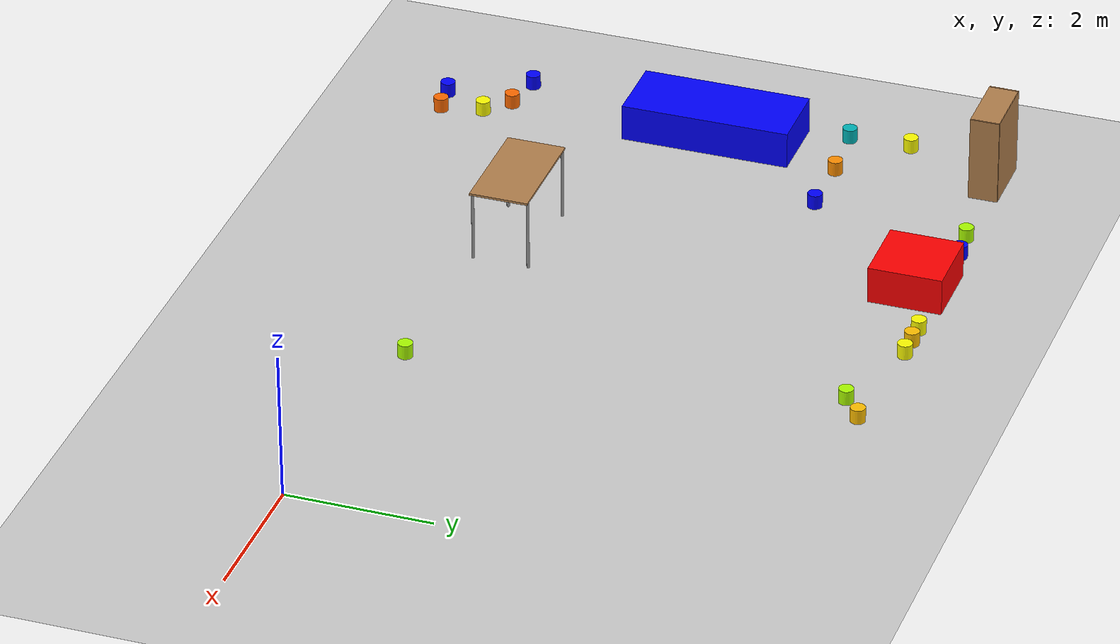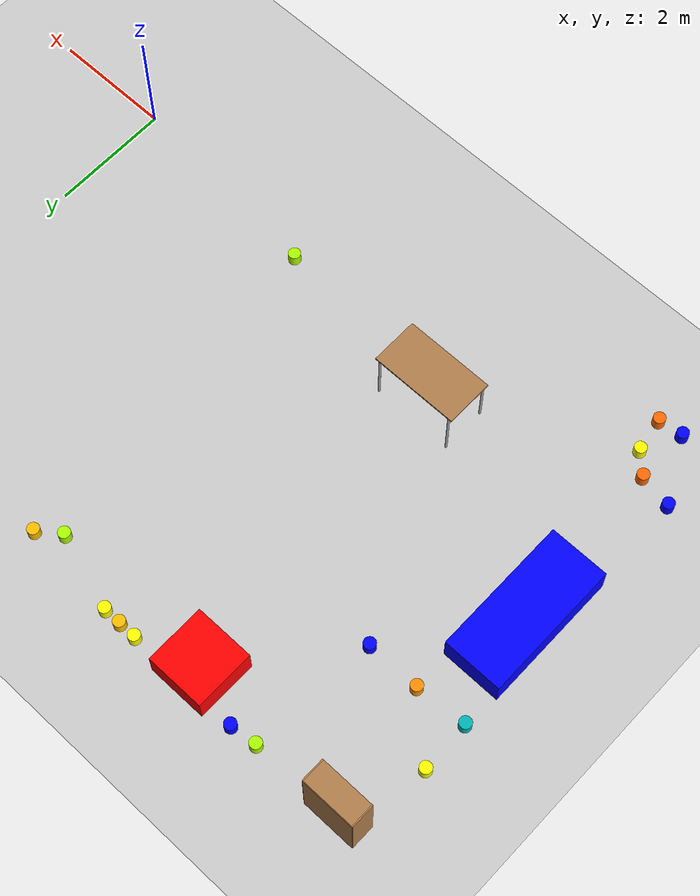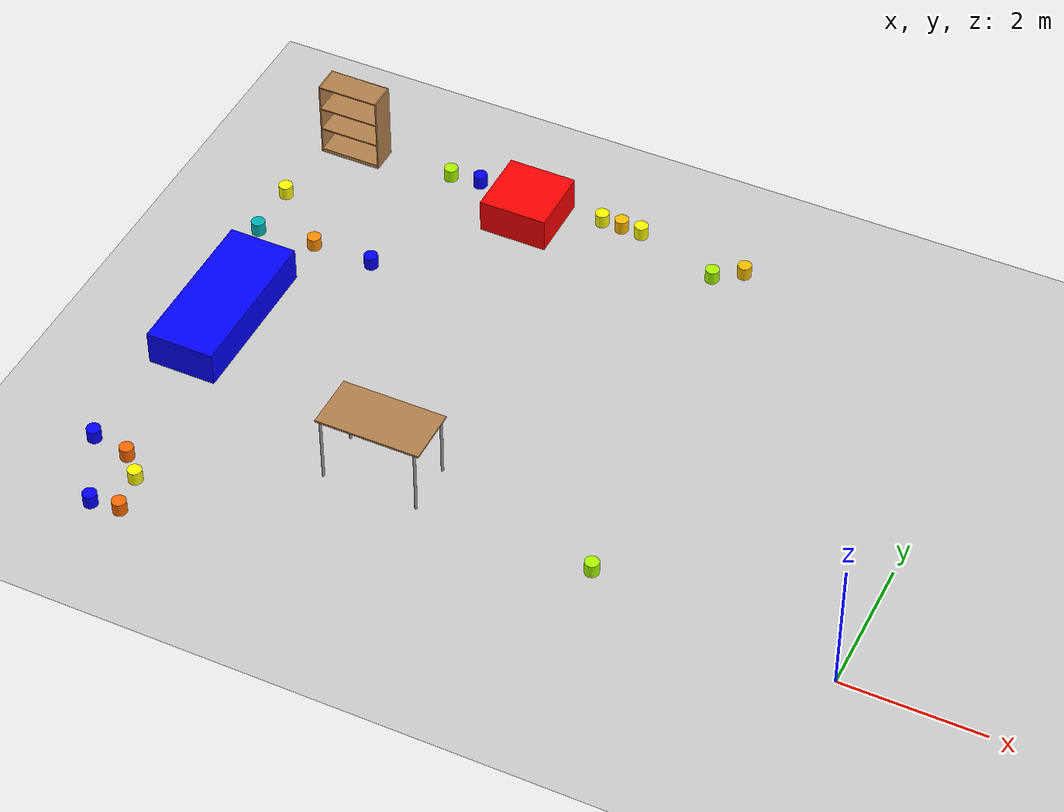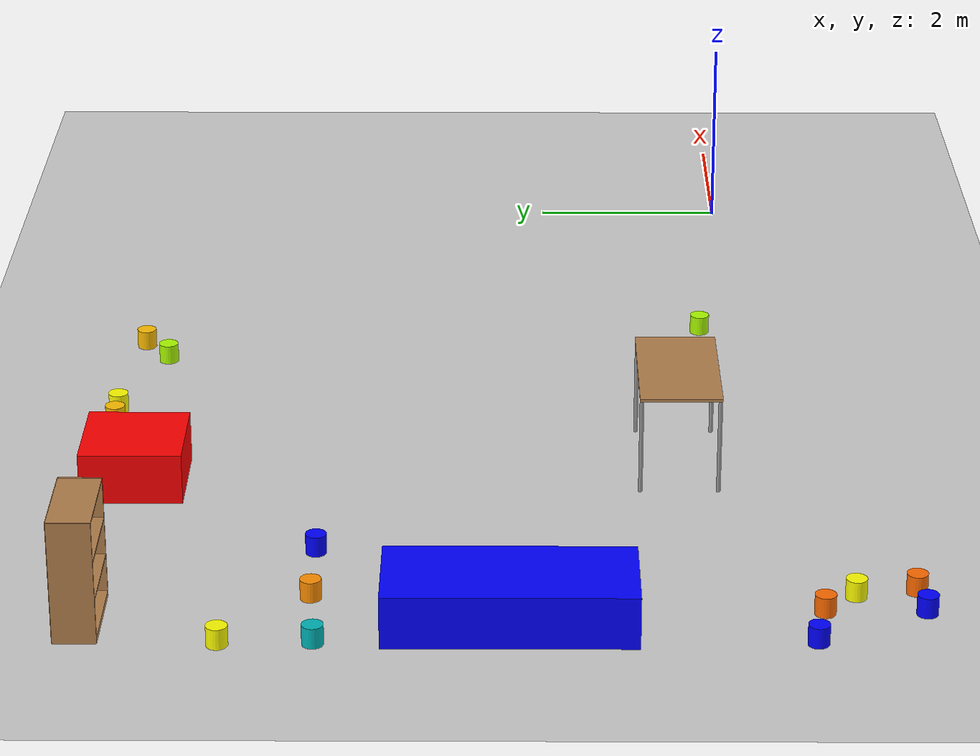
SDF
<sdf version="1.6">
 <world name="default">
  <model name="ground_plane">
   <static>1</static>
   <link name="link">
    <collision name="collision">
     <geometry><plane><normal>0 0 1</normal><size>100 100</size></plane></geometry>
     <surface>
      <contact><collide_bitmask>65535</collide_bitmask></contact>
      <friction><ode><mu>100</mu><mu2>50</mu2></ode></friction>
     </surface>
    </collision>
    <visual name="visual">
     <cast_shadows>0</cast_shadows>
     <geometry><plane><normal>0 0 1</normal><size>100 100</size></plane></geometry>
     <material>
      <script><uri>file://media/materials/scripts/gazebo.material</uri><name>Gazebo/Grey</name></script>
     </material>
    </visual>
   </link>
  </model>
  <model name="blue_box">
   <link name="link_0">
    <inertial>
     <mass>1</mass>
     <inertia>
      <ixx>0.166667</ixx>
      <ixy>0</ixy>
      <ixz>0</ixz>
      <iyy>0.166667</iyy>
      <iyz>0</iyz>
      <izz>0.166667</izz>
     </inertia>
    </inertial>
    <visual name="visual">
     <geometry><box><size>1 2.32493 1</size></box></geometry>
     <material>
      <lighting>1</lighting>
      <script><uri>file://media/materials/scripts/gazebo.material</uri><name>Gazebo/Grey</name></script>
      <shader type="vertex"><normal_map>__default__</normal_map></shader>
      <ambient>0 0 1 1</ambient>
      <diffuse>0 0 1 1</diffuse>
      <specular>0 0 1 1</specular>
      <emissive>0 0 0 1</emissive>
     </material>
    </visual>
    <collision name="collision">
     <geometry><box><size>1 2.32493 1</size></box></geometry>
     <surface>
      <friction>
       <ode><mu>1</mu><mu2>1</mu2><fdir1>0 0 0</fdir1><slip1>0</slip1><slip2>0</slip2></ode>
       <torsional>
        <coefficient>1</coefficient>
        <patch_radius>0</patch_radius>
        <surface_radius>0</surface_radius>
        <use_patch_radius>1</use_patch_radius>
        <ode><slip>0</slip></ode>
       </torsional>
      </friction>
      <bounce><restitution_coefficient>0</restitution_coefficient><threshold>1e+06</threshold></bounce>
      <contact>
       <collide_without_contact>0</collide_without_contact>
       <collide_without_contact_bitmask>1</collide_without_contact_bitmask>
       <collide_bitmask>1</collide_bitmask>
       <ode>
        <soft_cfm>0</soft_cfm>
        <soft_erp>0.2</soft_erp>
        <kp>1e+13</kp>
        <kd>1</kd>
        <max_vel>0.01</max_vel>
        <min_depth>0</min_depth>
       </ode>
       <bullet>
        <split_impulse>1</split_impulse>
        <split_impulse_penetration_threshold>-0.01</split_impulse_penetration_threshold>
        <soft_cfm>0</soft_cfm>
        <soft_erp>0.2</soft_erp>
        <kp>1e+13</kp>
        <kd>1</kd>
       </bullet>
      </contact>
     </surface>
    </collision>
   </link>
   <static>1</static>
   <pose>-9.98993 2.37638 0 0 -0 0</pose>
  </model>
  <model name="bookshelf">
   <static>1</static>
   <link name="link">
    <inertial><mass>1</mass></inertial>
    <collision name="back">
     <pose>0 0.005 0.6 0 -0 0</pose>
     <geometry><box><size>0.9 0.01 1.2</size></box></geometry>
    </collision>
    <visual name="visual1">
     <pose>0 0.005 0.6 0 -0 0</pose>
     <geometry><box><size>0.9 0.01 1.2</size></box></geometry>
     <material>
      <script><uri>file://media/materials/scripts/gazebo.material</uri><name>Gazebo/Wood</name></script>
     </material>
    </visual>
    <collision name="left_side">
     <pose>0.45 -0.195 0.6 0 -0 0</pose>
     <geometry><box><size>0.02 0.4 1.2</size></box></geometry>
    </collision>
    <visual name="visual2">
     <pose>0.45 -0.195 0.6 0 -0 0</pose>
     <geometry><box><size>0.02 0.4 1.2</size></box></geometry>
     <material>
      <script><uri>file://media/materials/scripts/gazebo.material</uri><name>Gazebo/Wood</name></script>
     </material>
    </visual>
    <collision name="right_side">
     <pose>-0.45 -0.195 0.6 0 -0 0</pose>
     <geometry><box><size>0.02 0.4 1.2</size></box></geometry>
    </collision>
    <visual name="visual3">
     <pose>-0.45 -0.195 0.6 0 -0 0</pose>
     <geometry><box><size>0.02 0.4 1.2</size></box></geometry>
     <material>
      <script><uri>file://media/materials/scripts/gazebo.material</uri><name>Gazebo/Wood</name></script>
     </material>
    </visual>
    <collision name="bottom">
     <pose>0 -0.195 0.03 0 -0 0</pose>
     <geometry><box><size>0.88 0.4 0.06</size></box></geometry>
    </collision>
    <visual name="visual4">
     <pose>0 -0.195 0.03 0 -0 0</pose>
     <geometry><box><size>0.88 0.4 0.06</size></box></geometry>
     <material>
      <script><uri>file://media/materials/scripts/gazebo.material</uri><name>Gazebo/Wood</name></script>
     </material>
    </visual>
    <collision name="top">
     <pose>0 -0.195 1.19 0 -0 0</pose>
     <geometry><box><size>0.88 0.4 0.02</size></box></geometry>
    </collision>
    <visual name="visual5">
     <pose>0 -0.195 1.19 0 -0 0</pose>
     <geometry><box><size>0.88 0.4 0.02</size></box></geometry>
     <material>
      <script><uri>file://media/materials/scripts/gazebo.material</uri><name>Gazebo/Wood</name></script>
     </material>
    </visual>
    <collision name="low_shelf">
     <pose>0 -0.195 0.43 0 -0 0</pose>
     <geometry><box><size>0.88 0.4 0.02</size></box></geometry>
    </collision>
    <visual name="visual6">
     <pose>0 -0.195 0.43 0 -0 0</pose>
     <geometry><box><size>0.88 0.4 0.02</size></box></geometry>
     <material>
      <script><uri>file://media/materials/scripts/gazebo.material</uri><name>Gazebo/Wood</name></script>
     </material>
    </visual>
    <collision name="high_shelf">
     <pose>0 -0.195 0.8 0 -0 0</pose>
     <geometry><box><size>0.88 0.4 0.02</size></box></geometry>
    </collision>
    <visual name="visual7">
     <pose>0 -0.195 0.8 0 -0 0</pose>
     <geometry><box><size>0.88 0.4 0.02</size></box></geometry>
     <material>
      <script><uri>file://media/materials/scripts/gazebo.material</uri><name>Gazebo/Wood</name></script>
     </material>
    </visual>
   </link>
   <pose>-9.97911 6.44677 0 0 -0 0</pose>
  </model>
  <model name="cylinder_y">
   <link name="link_0">
    <pose>0 0 0.1 0 -0 0</pose>
    <inertial>
     <mass>1</mass>
     <inertia><ixx>0.145833</ixx><ixy>0</ixy><ixz>0</ixz><iyy>0.145833</iyy><iyz>0</iyz><izz>0.125</izz></inertia>
    </inertial>
    <visual name="visual">
     <geometry><cylinder><radius>0.1</radius><length>0.2</length></cylinder></geometry>
     <material>
      <lighting>1</lighting>
      <script><uri>file://media/materials/scripts/gazebo.material</uri><name>Gazebo/Grey</name></script>
      <ambient>1 1 0 1</ambient>
      <diffuse>1 1 0 1</diffuse>
      <specular>0 0 0 1</specular>
      <emissive>0 0 0 1</emissive>
      <shader type="vertex"><normal_map>__default__</normal_map></shader>
     </material>
    </visual>
    <collision name="collision">
     <geometry><cylinder><radius>0.1</radius><length>0.2</length></cylinder></geometry>
     <surface>
      <friction>
       <ode><mu>1</mu><mu2>1</mu2><fdir1>0 0 0</fdir1><slip1>0</slip1><slip2>0</slip2></ode>
       <torsional>
        <coefficient>1</coefficient>
        <patch_radius>0</patch_radius>
        <surface_radius>0</surface_radius>
        <use_patch_radius>1</use_patch_radius>
        <ode><slip>0</slip></ode>
       </torsional>
      </friction>
      <bounce><restitution_coefficient>0</restitution_coefficient><threshold>1e+06</threshold></bounce>
      <contact>
       <collide_without_contact>0</collide_without_contact>
       <collide_without_contact_bitmask>1</collide_without_contact_bitmask>
       <collide_bitmask>1</collide_bitmask>
       <ode>
        <soft_cfm>0</soft_cfm>
        <soft_erp>0.2</soft_erp>
        <kp>1e+13</kp>
        <kd>1</kd>
        <max_vel>0.01</max_vel>
        <min_depth>0</min_depth>
       </ode>
       <bullet>
        <split_impulse>1</split_impulse>
        <split_impulse_penetration_threshold>-0.01</split_impulse_penetration_threshold>
        <soft_cfm>0</soft_cfm>
        <soft_erp>0.2</soft_erp>
        <kp>1e+13</kp>
        <kd>1</kd>
       </bullet>
      </contact>
     </surface>
    </collision>
   </link>
   <static>1</static>
   <pose>-6.12527 6.39196 0 0 -0 0</pose>
  </model>
  <model name="cylinder_yo">
   <link name="link_0">
    <pose>0 0 0.1 0 -0 0</pose>
    <inertial>
     <mass>1</mass>
     <inertia><ixx>0.145833</ixx><ixy>0</ixy><ixz>0</ixz><iyy>0.145833</iyy><iyz>0</iyz><izz>0.125</izz></inertia>
    </inertial>
    <visual name="visual">
     <geometry><cylinder><radius>0.1</radius><length>0.2</length></cylinder></geometry>
     <material>
      <lighting>1</lighting>
      <script><uri>file://media/materials/scripts/gazebo.material</uri><name>Gazebo/Grey</name></script>
      <ambient>1 0.749 0 1</ambient>
      <diffuse>1 0.749 0 1</diffuse>
      <specular>0 0 0 1</specular>
      <emissive>0 0 0 1</emissive>
      <shader type="vertex"><normal_map>__default__</normal_map></shader>
     </material>
    </visual>
    <collision name="collision">
     <geometry><cylinder><radius>0.1</radius><length>0.2</length></cylinder></geometry>
     <surface>
      <friction>
       <ode><mu>1</mu><mu2>1</mu2><fdir1>0 0 0</fdir1><slip1>0</slip1><slip2>0</slip2></ode>
       <torsional>
        <coefficient>1</coefficient>
        <patch_radius>0</patch_radius>
        <surface_radius>0</surface_radius>
        <use_patch_radius>1</use_patch_radius>
        <ode><slip>0</slip></ode>
       </torsional>
      </friction>
      <bounce><restitution_coefficient>0</restitution_coefficient><threshold>1e+06</threshold></bounce>
      <contact>
       <collide_without_contact>0</collide_without_contact>
       <collide_without_contact_bitmask>1</collide_without_contact_bitmask>
       <collide_bitmask>1</collide_bitmask>
       <ode>
        <soft_cfm>0</soft_cfm>
        <soft_erp>0.2</soft_erp>
        <kp>1e+13</kp>
        <kd>1</kd>
        <max_vel>0.01</max_vel>
        <min_depth>0</min_depth>
       </ode>
       <bullet>
        <split_impulse>1</split_impulse>
        <split_impulse_penetration_threshold>-0.01</split_impulse_penetration_threshold>
        <soft_cfm>0</soft_cfm>
        <soft_erp>0.2</soft_erp>
        <kp>1e+13</kp>
        <kd>1</kd>
       </bullet>
      </contact>
     </surface>
    </collision>
   </link>
   <static>1</static>
   <pose>-5.82217 6.39099 0 0 -0 0</pose>
  </model>
  <model name="cylinder_y_0">
   <link name="link_0">
    <pose>0 0 0.1 0 -0 0</pose>
    <inertial>
     <mass>1</mass>
     <inertia><ixx>0.145833</ixx><ixy>0</ixy><ixz>0</ixz><iyy>0.145833</iyy><iyz>0</iyz><izz>0.125</izz></inertia>
    </inertial>
    <visual name="visual">
     <geometry><cylinder><radius>0.1</radius><length>0.2</length></cylinder></geometry>
     <material>
      <lighting>1</lighting>
      <script><uri>file://media/materials/scripts/gazebo.material</uri><name>Gazebo/Grey</name></script>
      <ambient>1 1 0 1</ambient>
      <diffuse>1 1 0 1</diffuse>
      <specular>0 0 0 1</specular>
      <emissive>0 0 0 1</emissive>
      <shader type="vertex"><normal_map>__default__</normal_map></shader>
     </material>
    </visual>
    <collision name="collision">
     <geometry><cylinder><radius>0.1</radius><length>0.2</length></cylinder></geometry>
     <surface>
      <friction>
       <ode><mu>1</mu><mu2>1</mu2><fdir1>0 0 0</fdir1><slip1>0</slip1><slip2>0</slip2></ode>
       <torsional>
        <coefficient>1</coefficient>
        <patch_radius>0</patch_radius>
        <surface_radius>0</surface_radius>
        <use_patch_radius>1</use_patch_radius>
        <ode><slip>0</slip></ode>
       </torsional>
      </friction>
      <bounce><restitution_coefficient>0</restitution_coefficient><threshold>1e+06</threshold></bounce>
      <contact>
       <collide_without_contact>0</collide_without_contact>
       <collide_without_contact_bitmask>1</collide_without_contact_bitmask>
       <collide_bitmask>1</collide_bitmask>
       <ode>
        <soft_cfm>0</soft_cfm>
        <soft_erp>0.2</soft_erp>
        <kp>1e+13</kp>
        <kd>1</kd>
        <max_vel>0.01</max_vel>
        <min_depth>0</min_depth>
       </ode>
       <bullet>
        <split_impulse>1</split_impulse>
        <split_impulse_penetration_threshold>-0.01</split_impulse_penetration_threshold>
        <soft_cfm>0</soft_cfm>
        <soft_erp>0.2</soft_erp>
        <kp>1e+13</kp>
        <kd>1</kd>
       </bullet>
      </contact>
     </surface>
    </collision>
   </link>
   <static>1</static>
   <pose>-5.51904 6.39011 0 0 -0 0</pose>
  </model>
  <model name="cylinder_b_3">
   <link name="link_0">
    <pose>0 0 0.1 0 -0 0</pose>
    <inertial>
     <mass>1</mass>
     <inertia><ixx>0.145833</ixx><ixy>0</ixy><ixz>0</ixz><iyy>0.145833</iyy><iyz>0</iyz><izz>0.125</izz></inertia>
    </inertial>
    <visual name="visual">
     <geometry><cylinder><radius>0.1</radius><length>0.2</length></cylinder></geometry>
     <material>
      <lighting>1</lighting>
      <script><uri>file://media/materials/scripts/gazebo.material</uri><name>Gazebo/Grey</name></script>
      <ambient>0 0 1 1</ambient>
      <diffuse>0 0 1 1</diffuse>
      <specular>0 0 0 1</specular>
      <emissive>0 0 0 1</emissive>
      <shader type="vertex"><normal_map>__default__</normal_map></shader>
     </material>
    </visual>
    <collision name="collision">
     <geometry><cylinder><radius>0.1</radius><length>0.2</length></cylinder></geometry>
     <surface>
      <friction>
       <ode><mu>1</mu><mu2>1</mu2><fdir1>0 0 0</fdir1><slip1>0</slip1><slip2>0</slip2></ode>
       <torsional>
        <coefficient>1</coefficient>
        <patch_radius>0</patch_radius>
        <surface_radius>0</surface_radius>
        <use_patch_radius>1</use_patch_radius>
        <ode><slip>0</slip></ode>
       </torsional>
      </friction>
      <bounce><restitution_coefficient>0</restitution_coefficient><threshold>1e+06</threshold></bounce>
      <contact>
       <collide_without_contact>0</collide_without_contact>
       <collide_without_contact_bitmask>1</collide_without_contact_bitmask>
       <collide_bitmask>1</collide_bitmask>
       <ode>
        <soft_cfm>0</soft_cfm>
        <soft_erp>0.2</soft_erp>
        <kp>1e+13</kp>
        <kd>1</kd>
        <max_vel>0.01</max_vel>
        <min_depth>0</min_depth>
       </ode>
       <bullet>
        <split_impulse>1</split_impulse>
        <split_impulse_penetration_threshold>-0.01</split_impulse_penetration_threshold>
        <soft_cfm>0</soft_cfm>
        <soft_erp>0.2</soft_erp>
        <kp>1e+13</kp>
        <kd>1</kd>
       </bullet>
      </contact>
     </surface>
    </collision>
   </link>
   <static>1</static>
   <pose>-9.83604 -1.40171 0 0 -0 0</pose>
  </model>
  <model name="cylinder_or_1">
   <link name="link_0">
    <pose>0 0 0.1 0 -0 0</pose>
    <inertial>
     <mass>1</mass>
     <inertia><ixx>0.145833</ixx><ixy>0</ixy><ixz>0</ixz><iyy>0.145833</iyy><iyz>0</iyz><izz>0.125</izz></inertia>
    </inertial>
    <visual name="visual">
     <geometry><cylinder><radius>0.1</radius><length>0.2</length></cylinder></geometry>
     <material>
      <lighting>1</lighting>
      <script><uri>file://media/materials/scripts/gazebo.material</uri><name>Gazebo/Grey</name></script>
      <ambient>1 0.416 0 1</ambient>
      <diffuse>1 0.416 0 1</diffuse>
      <specular>0 0 0 1</specular>
      <emissive>0 0 0 1</emissive>
      <shader type="vertex"><normal_map>__default__</normal_map></shader>
     </material>
    </visual>
    <collision name="collision">
     <geometry><cylinder><radius>0.1</radius><length>0.2</length></cylinder></geometry>
     <surface>
      <friction>
       <ode><mu>1</mu><mu2>1</mu2><fdir1>0 0 0</fdir1><slip1>0</slip1><slip2>0</slip2></ode>
       <torsional>
        <coefficient>1</coefficient>
        <patch_radius>0</patch_radius>
        <surface_radius>0</surface_radius>
        <use_patch_radius>1</use_patch_radius>
        <ode><slip>0</slip></ode>
       </torsional>
      </friction>
      <bounce><restitution_coefficient>0</restitution_coefficient><threshold>1e+06</threshold></bounce>
      <contact>
       <collide_without_contact>0</collide_without_contact>
       <collide_without_contact_bitmask>1</collide_without_contact_bitmask>
       <collide_bitmask>1</collide_bitmask>
       <ode>
        <soft_cfm>0</soft_cfm>
        <soft_erp>0.2</soft_erp>
        <kp>1e+13</kp>
        <kd>1</kd>
        <max_vel>0.01</max_vel>
        <min_depth>0</min_depth>
       </ode>
       <bullet>
        <split_impulse>1</split_impulse>
        <split_impulse_penetration_threshold>-0.01</split_impulse_penetration_threshold>
        <soft_cfm>0</soft_cfm>
        <soft_erp>0.2</soft_erp>
        <kp>1e+13</kp>
        <kd>1</kd>
       </bullet>
      </contact>
     </surface>
    </collision>
   </link>
   <static>1</static>
   <pose>-9.42535 -1.35183 0 0 -0 0</pose>
  </model>
  <model name="cylinder_or_2">
   <link name="link_0">
    <pose>0 0 0.1 0 -0 0</pose>
    <inertial>
     <mass>1</mass>
     <inertia><ixx>0.145833</ixx><ixy>0</ixy><ixz>0</ixz><iyy>0.145833</iyy><iyz>0</iyz><izz>0.125</izz></inertia>
    </inertial>
    <visual name="visual">
     <geometry><cylinder><radius>0.1</radius><length>0.2</length></cylinder></geometry>
     <material>
      <lighting>1</lighting>
      <script><uri>file://media/materials/scripts/gazebo.material</uri><name>Gazebo/Grey</name></script>
      <ambient>1 0.416 0 1</ambient>
      <diffuse>1 0.416 0 1</diffuse>
      <specular>0 0 0 1</specular>
      <emissive>0 0 0 1</emissive>
      <shader type="vertex"><normal_map>__default__</normal_map></shader>
     </material>
    </visual>
    <collision name="collision">
     <geometry><cylinder><radius>0.1</radius><length>0.2</length></cylinder></geometry>
     <surface>
      <friction>
       <ode><mu>1</mu><mu2>1</mu2><fdir1>0 0 0</fdir1><slip1>0</slip1><slip2>0</slip2></ode>
       <torsional>
        <coefficient>1</coefficient>
        <patch_radius>0</patch_radius>
        <surface_radius>0</surface_radius>
        <use_patch_radius>1</use_patch_radius>
        <ode><slip>0</slip></ode>
       </torsional>
      </friction>
      <bounce><restitution_coefficient>0</restitution_coefficient><threshold>1e+06</threshold></bounce>
      <contact>
       <collide_without_contact>0</collide_without_contact>
       <collide_without_contact_bitmask>1</collide_without_contact_bitmask>
       <collide_bitmask>1</collide_bitmask>
       <ode>
        <soft_cfm>0</soft_cfm>
        <soft_erp>0.2</soft_erp>
        <kp>1e+13</kp>
        <kd>1</kd>
        <max_vel>0.01</max_vel>
        <min_depth>0</min_depth>
       </ode>
       <bullet>
        <split_impulse>1</split_impulse>
        <split_impulse_penetration_threshold>-0.01</split_impulse_penetration_threshold>
        <soft_cfm>0</soft_cfm>
        <soft_erp>0.2</soft_erp>
        <kp>1e+13</kp>
        <kd>1</kd>
       </bullet>
      </contact>
     </surface>
    </collision>
   </link>
   <static>1</static>
   <pose>-9.83394 -0.476864 0 0 -0 0</pose>
  </model>
  <model name="cylinder_y_1">
   <link name="link_0">
    <pose>0 0 0.1 0 -0 0</pose>
    <inertial>
     <mass>1</mass>
     <inertia><ixx>0.145833</ixx><ixy>0</ixy><ixz>0</ixz><iyy>0.145833</iyy><iyz>0</iyz><izz>0.125</izz></inertia>
    </inertial>
    <visual name="visual">
     <geometry><cylinder><radius>0.1</radius><length>0.2</length></cylinder></geometry>
     <material>
      <lighting>1</lighting>
      <script><uri>file://media/materials/scripts/gazebo.material</uri><name>Gazebo/Grey</name></script>
      <ambient>1 1 0 1</ambient>
      <diffuse>1 1 0 1</diffuse>
      <specular>0 0 0 1</specular>
      <emissive>0 0 0 1</emissive>
      <shader type="vertex"><normal_map>__default__</normal_map></shader>
     </material>
    </visual>
    <collision name="collision">
     <geometry><cylinder><radius>0.1</radius><length>0.2</length></cylinder></geometry>
     <surface>
      <friction>
       <ode><mu>1</mu><mu2>1</mu2><fdir1>0 0 0</fdir1><slip1>0</slip1><slip2>0</slip2></ode>
       <torsional>
        <coefficient>1</coefficient>
        <patch_radius>0</patch_radius>
        <surface_radius>0</surface_radius>
        <use_patch_radius>1</use_patch_radius>
        <ode><slip>0</slip></ode>
       </torsional>
      </friction>
      <bounce><restitution_coefficient>0</restitution_coefficient><threshold>1e+06</threshold></bounce>
      <contact>
       <collide_without_contact>0</collide_without_contact>
       <collide_without_contact_bitmask>1</collide_without_contact_bitmask>
       <collide_bitmask>1</collide_bitmask>
       <ode>
        <soft_cfm>0</soft_cfm>
        <soft_erp>0.2</soft_erp>
        <kp>1e+13</kp>
        <kd>1</kd>
        <max_vel>0.01</max_vel>
        <min_depth>0</min_depth>
       </ode>
       <bullet>
        <split_impulse>1</split_impulse>
        <split_impulse_penetration_threshold>-0.01</split_impulse_penetration_threshold>
        <soft_cfm>0</soft_cfm>
        <soft_erp>0.2</soft_erp>
        <kp>1e+13</kp>
        <kd>1</kd>
       </bullet>
      </contact>
     </surface>
    </collision>
   </link>
   <static>1</static>
   <pose>-9.52624 -0.785309 0 0 -0 0</pose>
  </model>
  <model name="cylinder_b_4">
   <link name="link_0">
    <pose>0 0 0.1 0 -0 0</pose>
    <inertial>
     <mass>1</mass>
     <inertia><ixx>0.145833</ixx><ixy>0</ixy><ixz>0</ixz><iyy>0.145833</iyy><iyz>0</iyz><izz>0.125</izz></inertia>
    </inertial>
    <visual name="visual">
     <geometry><cylinder><radius>0.1</radius><length>0.2</length></cylinder></geometry>
     <material>
      <lighting>1</lighting>
      <script><uri>file://media/materials/scripts/gazebo.material</uri><name>Gazebo/Grey</name></script>
      <ambient>0 0 1 1</ambient>
      <diffuse>0 0 1 1</diffuse>
      <specular>0 0 0 1</specular>
      <emissive>0 0 0 1</emissive>
      <shader type="vertex"><normal_map>__default__</normal_map></shader>
     </material>
    </visual>
    <collision name="collision">
     <geometry><cylinder><radius>0.1</radius><length>0.2</length></cylinder></geometry>
     <surface>
      <friction>
       <ode><mu>1</mu><mu2>1</mu2><fdir1>0 0 0</fdir1><slip1>0</slip1><slip2>0</slip2></ode>
       <torsional>
        <coefficient>1</coefficient>
        <patch_radius>0</patch_radius>
        <surface_radius>0</surface_radius>
        <use_patch_radius>1</use_patch_radius>
        <ode><slip>0</slip></ode>
       </torsional>
      </friction>
      <bounce><restitution_coefficient>0</restitution_coefficient><threshold>1e+06</threshold></bounce>
      <contact>
       <collide_without_contact>0</collide_without_contact>
       <collide_without_contact_bitmask>1</collide_without_contact_bitmask>
       <collide_bitmask>1</collide_bitmask>
       <ode>
        <soft_cfm>0</soft_cfm>
        <soft_erp>0.2</soft_erp>
        <kp>1e+13</kp>
        <kd>1</kd>
        <max_vel>0.01</max_vel>
        <min_depth>0</min_depth>
       </ode>
       <bullet>
        <split_impulse>1</split_impulse>
        <split_impulse_penetration_threshold>-0.01</split_impulse_penetration_threshold>
        <soft_cfm>0</soft_cfm>
        <soft_erp>0.2</soft_erp>
        <kp>1e+13</kp>
        <kd>1</kd>
       </bullet>
      </contact>
     </surface>
    </collision>
   </link>
   <static>1</static>
   <pose>-10.3986 -0.371477 0 0 -0 0</pose>
  </model>
  <model name="cylinder_gy_4">
   <link name="link_0">
    <pose>0 0 0.1 0 -0 0</pose>
    <inertial>
     <mass>1</mass>
     <inertia><ixx>0.145833</ixx><ixy>0</ixy><ixz>0</ixz><iyy>0.145833</iyy><iyz>0</iyz><izz>0.125</izz></inertia>
    </inertial>
    <visual name="visual">
     <geometry><cylinder><radius>0.1</radius><length>0.2</length></cylinder></geometry>
     <material>
      <lighting>1</lighting>
      <script><uri>file://media/materials/scripts/gazebo.material</uri><name>Gazebo/Grey</name></script>
      <ambient>0.675 1 0 1</ambient>
      <diffuse>0.675 1 0 1</diffuse>
      <specular>0 0 0 1</specular>
      <emissive>0 0 0 1</emissive>
      <shader type="vertex"><normal_map>__default__</normal_map></shader>
     </material>
    </visual>
    <collision name="collision">
     <geometry><cylinder><radius>0.1</radius><length>0.2</length></cylinder></geometry>
     <surface>
      <friction>
       <ode><mu>1</mu><mu2>1</mu2><fdir1>0 0 0</fdir1><slip1>0</slip1><slip2>0</slip2></ode>
       <torsional>
        <coefficient>1</coefficient>
        <patch_radius>0</patch_radius>
        <surface_radius>0</surface_radius>
        <use_patch_radius>1</use_patch_radius>
        <ode><slip>0</slip></ode>
       </torsional>
      </friction>
      <bounce><restitution_coefficient>0</restitution_coefficient><threshold>1e+06</threshold></bounce>
      <contact>
       <collide_without_contact>0</collide_without_contact>
       <collide_without_contact_bitmask>1</collide_without_contact_bitmask>
       <collide_bitmask>1</collide_bitmask>
       <ode>
        <soft_cfm>0</soft_cfm>
        <soft_erp>0.2</soft_erp>
        <kp>1e+13</kp>
        <kd>1</kd>
        <max_vel>0.01</max_vel>
        <min_depth>0</min_depth>
       </ode>
       <bullet>
        <split_impulse>1</split_impulse>
        <split_impulse_penetration_threshold>-0.01</split_impulse_penetration_threshold>
        <soft_cfm>0</soft_cfm>
        <soft_erp>0.2</soft_erp>
        <kp>1e+13</kp>
        <kd>1</kd>
       </bullet>
      </contact>
     </surface>
    </collision>
   </link>
   <static>1</static>
   <pose>-3.47238 0.335939 0 0 -0 0</pose>
  </model>
  <model name="cylinder_b_13">
   <link name="link_0">
    <pose>0 0 0.1 0 -0 0</pose>
    <inertial>
     <mass>1</mass>
     <inertia><ixx>0.145833</ixx><ixy>0</ixy><ixz>0</ixz><iyy>0.145833</iyy><iyz>0</iyz><izz>0.125</izz></inertia>
    </inertial>
    <visual name="visual">
     <geometry><cylinder><radius>0.1</radius><length>0.2</length></cylinder></geometry>
     <material>
      <lighting>1</lighting>
      <script><uri>file://media/materials/scripts/gazebo.material</uri><name>Gazebo/Grey</name></script>
      <ambient>0 0 1 1</ambient>
      <diffuse>0 0 1 1</diffuse>
      <specular>0 0 0 1</specular>
      <emissive>0 0 0 1</emissive>
      <shader type="vertex"><normal_map>__default__</normal_map></shader>
     </material>
    </visual>
    <collision name="collision">
     <geometry><cylinder><radius>0.1</radius><length>0.2</length></cylinder></geometry>
     <surface>
      <friction>
       <ode><mu>1</mu><mu2>1</mu2><fdir1>0 0 0</fdir1><slip1>0</slip1><slip2>0</slip2></ode>
       <torsional>
        <coefficient>1</coefficient>
        <patch_radius>0</patch_radius>
        <surface_radius>0</surface_radius>
        <use_patch_radius>1</use_patch_radius>
        <ode><slip>0</slip></ode>
       </torsional>
      </friction>
      <bounce><restitution_coefficient>0</restitution_coefficient><threshold>1e+06</threshold></bounce>
      <contact>
       <collide_without_contact>0</collide_without_contact>
       <collide_without_contact_bitmask>1</collide_without_contact_bitmask>
       <collide_bitmask>1</collide_bitmask>
       <ode>
        <soft_cfm>0</soft_cfm>
        <soft_erp>0.2</soft_erp>
        <kp>1e+13</kp>
        <kd>1</kd>
        <max_vel>0.01</max_vel>
        <min_depth>0</min_depth>
       </ode>
       <bullet>
        <split_impulse>1</split_impulse>
        <split_impulse_penetration_threshold>-0.01</split_impulse_penetration_threshold>
        <soft_cfm>0</soft_cfm>
        <soft_erp>0.2</soft_erp>
        <kp>1e+13</kp>
        <kd>1</kd>
       </bullet>
      </contact>
     </surface>
    </collision>
   </link>
   <static>1</static>
   <pose>-8.66138 4.19456 0 0 -0 0</pose>
  </model>
  <model name="cylinder_bg_8">
   <link name="link_0">
    <pose>0 0 0.1 0 -0 0</pose>
    <inertial>
     <mass>1</mass>
     <inertia><ixx>0.145833</ixx><ixy>0</ixy><ixz>0</ixz><iyy>0.145833</iyy><iyz>0</iyz><izz>0.125</izz></inertia>
    </inertial>
    <visual name="visual">
     <geometry><cylinder><radius>0.1</radius><length>0.2</length></cylinder></geometry>
     <material>
      <lighting>1</lighting>
      <script><uri>file://media/materials/scripts/gazebo.material</uri><name>Gazebo/Grey</name></script>
      <ambient>0 0.71 0.722 1</ambient>
      <diffuse>0 0.71 0.722 1</diffuse>
      <specular>0 0 0 1</specular>
      <emissive>0 0 0 1</emissive>
      <shader type="vertex"><normal_map>__default__</normal_map></shader>
     </material>
    </visual>
    <collision name="collision">
     <geometry><cylinder><radius>0.1</radius><length>0.2</length></cylinder></geometry>
     <surface>
      <friction>
       <ode><mu>1</mu><mu2>1</mu2><fdir1>0 0 0</fdir1><slip1>0</slip1><slip2>0</slip2></ode>
       <torsional>
        <coefficient>1</coefficient>
        <patch_radius>0</patch_radius>
        <surface_radius>0</surface_radius>
        <use_patch_radius>1</use_patch_radius>
        <ode><slip>0</slip></ode>
       </torsional>
      </friction>
      <bounce><restitution_coefficient>0</restitution_coefficient><threshold>1e+06</threshold></bounce>
      <contact>
       <collide_without_contact>0</collide_without_contact>
       <collide_without_contact_bitmask>1</collide_without_contact_bitmask>
       <collide_bitmask>1</collide_bitmask>
       <ode>
        <soft_cfm>0</soft_cfm>
        <soft_erp>0.2</soft_erp>
        <kp>1e+13</kp>
        <kd>1</kd>
        <max_vel>0.01</max_vel>
        <min_depth>0</min_depth>
       </ode>
       <bullet>
        <split_impulse>1</split_impulse>
        <split_impulse_penetration_threshold>-0.01</split_impulse_penetration_threshold>
        <soft_cfm>0</soft_cfm>
        <soft_erp>0.2</soft_erp>
        <kp>1e+13</kp>
        <kd>1</kd>
       </bullet>
      </contact>
     </surface>
    </collision>
   </link>
   <static>1</static>
   <pose>-10.4212 4.13182 0 0 -0 0</pose>
  </model>
  <model name="cylinder_o_3">
   <link name="link_0">
    <pose>0 0 0.1 0 -0 0</pose>
    <inertial>
     <mass>1</mass>
     <inertia><ixx>0.145833</ixx><ixy>0</ixy><ixz>0</ixz><iyy>0.145833</iyy><iyz>0</iyz><izz>0.125</izz></inertia>
    </inertial>
    <visual name="visual">
     <geometry><cylinder><radius>0.1</radius><length>0.2</length></cylinder></geometry>
     <material>
      <lighting>1</lighting>
      <script><uri>file://media/materials/scripts/gazebo.material</uri><name>Gazebo/Grey</name></script>
      <ambient>1 0.561 0 1</ambient>
      <diffuse>1 0.561 0 1</diffuse>
      <specular>0 0 0 1</specular>
      <emissive>0 0 0 1</emissive>
      <shader type="vertex"><normal_map>__default__</normal_map></shader>
     </material>
    </visual>
    <collision name="collision">
     <geometry><cylinder><radius>0.1</radius><length>0.2</length></cylinder></geometry>
     <surface>
      <friction>
       <ode><mu>1</mu><mu2>1</mu2><fdir1>0 0 0</fdir1><slip1>0</slip1><slip2>0</slip2></ode>
       <torsional>
        <coefficient>1</coefficient>
        <patch_radius>0</patch_radius>
        <surface_radius>0</surface_radius>
        <use_patch_radius>1</use_patch_radius>
        <ode><slip>0</slip></ode>
       </torsional>
      </friction>
      <bounce><restitution_coefficient>0</restitution_coefficient><threshold>1e+06</threshold></bounce>
      <contact>
       <collide_without_contact>0</collide_without_contact>
       <collide_without_contact_bitmask>1</collide_without_contact_bitmask>
       <collide_bitmask>1</collide_bitmask>
       <ode>
        <soft_cfm>0</soft_cfm>
        <soft_erp>0.2</soft_erp>
        <kp>1e+13</kp>
        <kd>1</kd>
        <max_vel>0.01</max_vel>
        <min_depth>0</min_depth>
       </ode>
       <bullet>
        <split_impulse>1</split_impulse>
        <split_impulse_penetration_threshold>-0.01</split_impulse_penetration_threshold>
        <soft_cfm>0</soft_cfm>
        <soft_erp>0.2</soft_erp>
        <kp>1e+13</kp>
        <kd>1</kd>
       </bullet>
      </contact>
     </surface>
    </collision>
   </link>
   <static>1</static>
   <pose>-9.56196 4.19498 0 0 -0 0</pose>
  </model>
  <model name="cylinder_y_11">
   <link name="link_0">
    <pose>0 0 0.1 0 -0 0</pose>
    <inertial>
     <mass>1</mass>
     <inertia><ixx>0.145833</ixx><ixy>0</ixy><ixz>0</ixz><iyy>0.145833</iyy><iyz>0</iyz><izz>0.125</izz></inertia>
    </inertial>
    <visual name="visual">
     <geometry><cylinder><radius>0.1</radius><length>0.2</length></cylinder></geometry>
     <material>
      <lighting>1</lighting>
      <script><uri>file://media/materials/scripts/gazebo.material</uri><name>Gazebo/Grey</name></script>
      <ambient>1 1 0 1</ambient>
      <diffuse>1 1 0 1</diffuse>
      <specular>0 0 0 1</specular>
      <emissive>0 0 0 1</emissive>
      <shader type="vertex"><normal_map>__default__</normal_map></shader>
     </material>
    </visual>
    <collision name="collision">
     <geometry><cylinder><radius>0.1</radius><length>0.2</length></cylinder></geometry>
     <surface>
      <friction>
       <ode><mu>1</mu><mu2>1</mu2><fdir1>0 0 0</fdir1><slip1>0</slip1><slip2>0</slip2></ode>
       <torsional>
        <coefficient>1</coefficient>
        <patch_radius>0</patch_radius>
        <surface_radius>0</surface_radius>
        <use_patch_radius>1</use_patch_radius>
        <ode><slip>0</slip></ode>
       </torsional>
      </friction>
      <bounce><restitution_coefficient>0</restitution_coefficient><threshold>1e+06</threshold></bounce>
      <contact>
       <collide_without_contact>0</collide_without_contact>
       <collide_without_contact_bitmask>1</collide_without_contact_bitmask>
       <collide_bitmask>1</collide_bitmask>
       <ode>
        <soft_cfm>0</soft_cfm>
        <soft_erp>0.2</soft_erp>
        <kp>1e+13</kp>
        <kd>1</kd>
        <max_vel>0.01</max_vel>
        <min_depth>0</min_depth>
       </ode>
       <bullet>
        <split_impulse>1</split_impulse>
        <split_impulse_penetration_threshold>-0.01</split_impulse_penetration_threshold>
        <soft_cfm>0</soft_cfm>
        <soft_erp>0.2</soft_erp>
        <kp>1e+13</kp>
        <kd>1</kd>
       </bullet>
      </contact>
     </surface>
    </collision>
   </link>
   <static>1</static>
   <pose>-10.4444 4.98126 0 0 -0 0</pose>
  </model>
  <model name="cylinder_gy_6">
   <link name="link_0">
    <pose>0 0 0.1 0 -0 0</pose>
    <inertial>
     <mass>1</mass>
     <inertia><ixx>0.145833</ixx><ixy>0</ixy><ixz>0</ixz><iyy>0.145833</iyy><iyz>0</iyz><izz>0.125</izz></inertia>
    </inertial>
    <visual name="visual">
     <geometry><cylinder><radius>0.1</radius><length>0.2</length></cylinder></geometry>
     <material>
      <lighting>1</lighting>
      <script><uri>file://media/materials/scripts/gazebo.material</uri><name>Gazebo/Grey</name></script>
      <ambient>0.675 1 0 1</ambient>
      <diffuse>0.675 1 0 1</diffuse>
      <specular>0 0 0 1</specular>
      <emissive>0 0 0 1</emissive>
      <shader type="vertex"><normal_map>__default__</normal_map></shader>
     </material>
    </visual>
    <collision name="collision">
     <geometry><cylinder><radius>0.1</radius><length>0.2</length></cylinder></geometry>
     <surface>
      <friction>
       <ode><mu>1</mu><mu2>1</mu2><fdir1>0 0 0</fdir1><slip1>0</slip1><slip2>0</slip2></ode>
       <torsional>
        <coefficient>1</coefficient>
        <patch_radius>0</patch_radius>
        <surface_radius>0</surface_radius>
        <use_patch_radius>1</use_patch_radius>
        <ode><slip>0</slip></ode>
       </torsional>
      </friction>
      <bounce><restitution_coefficient>0</restitution_coefficient><threshold>1e+06</threshold></bounce>
      <contact>
       <collide_without_contact>0</collide_without_contact>
       <collide_without_contact_bitmask>1</collide_without_contact_bitmask>
       <collide_bitmask>1</collide_bitmask>
       <ode>
        <soft_cfm>0</soft_cfm>
        <soft_erp>0.2</soft_erp>
        <kp>1e+13</kp>
        <kd>1</kd>
        <max_vel>0.01</max_vel>
        <min_depth>0</min_depth>
       </ode>
       <bullet>
        <split_impulse>1</split_impulse>
        <split_impulse_penetration_threshold>-0.01</split_impulse_penetration_threshold>
        <soft_cfm>0</soft_cfm>
        <soft_erp>0.2</soft_erp>
        <kp>1e+13</kp>
        <kd>1</kd>
       </bullet>
      </contact>
     </surface>
    </collision>
   </link>
   <static>1</static>
   <pose>-8.48654 6.33248 0 0 -0 0</pose>
  </model>
  <model name="cylinder_b_14">
   <link name="link_0">
    <pose>0 0 0.1 0 -0 0</pose>
    <inertial>
     <mass>1</mass>
     <inertia><ixx>0.145833</ixx><ixy>0</ixy><ixz>0</ixz><iyy>0.145833</iyy><iyz>0</iyz><izz>0.125</izz></inertia>
    </inertial>
    <visual name="visual">
     <geometry><cylinder><radius>0.1</radius><length>0.2</length></cylinder></geometry>
     <material>
      <lighting>1</lighting>
      <script><uri>file://media/materials/scripts/gazebo.material</uri><name>Gazebo/Grey</name></script>
      <ambient>0 0 1 1</ambient>
      <diffuse>0 0 1 1</diffuse>
      <specular>0 0 0 1</specular>
      <emissive>0 0 0 1</emissive>
      <shader type="vertex"><normal_map>__default__</normal_map></shader>
     </material>
    </visual>
    <collision name="collision">
     <geometry><cylinder><radius>0.1</radius><length>0.2</length></cylinder></geometry>
     <surface>
      <friction>
       <ode><mu>1</mu><mu2>1</mu2><fdir1>0 0 0</fdir1><slip1>0</slip1><slip2>0</slip2></ode>
       <torsional>
        <coefficient>1</coefficient>
        <patch_radius>0</patch_radius>
        <surface_radius>0</surface_radius>
        <use_patch_radius>1</use_patch_radius>
        <ode><slip>0</slip></ode>
       </torsional>
      </friction>
      <bounce><restitution_coefficient>0</restitution_coefficient><threshold>1e+06</threshold></bounce>
      <contact>
       <collide_without_contact>0</collide_without_contact>
       <collide_without_contact_bitmask>1</collide_without_contact_bitmask>
       <collide_bitmask>1</collide_bitmask>
       <ode>
        <soft_cfm>0</soft_cfm>
        <soft_erp>0.2</soft_erp>
        <kp>1e+13</kp>
        <kd>1</kd>
        <max_vel>0.01</max_vel>
        <min_depth>0</min_depth>
       </ode>
       <bullet>
        <split_impulse>1</split_impulse>
        <split_impulse_penetration_threshold>-0.01</split_impulse_penetration_threshold>
        <soft_cfm>0</soft_cfm>
        <soft_erp>0.2</soft_erp>
        <kp>1e+13</kp>
        <kd>1</kd>
       </bullet>
      </contact>
     </surface>
    </collision>
   </link>
   <static>1</static>
   <pose>-8.04015 6.3805 0 0 -0 0</pose>
  </model>
  <model name="cylinder_yo_9">
   <link name="link_0">
    <pose>0 0 0.1 0 -0 0</pose>
    <inertial>
     <mass>1</mass>
     <inertia><ixx>0.145833</ixx><ixy>0</ixy><ixz>0</ixz><iyy>0.145833</iyy><iyz>0</iyz><izz>0.125</izz></inertia>
    </inertial>
    <visual name="visual">
     <geometry><cylinder><radius>0.1</radius><length>0.2</length></cylinder></geometry>
     <material>
      <lighting>1</lighting>
      <script><uri>file://media/materials/scripts/gazebo.material</uri><name>Gazebo/Grey</name></script>
      <ambient>1 0.749 0 1</ambient>
      <diffuse>1 0.749 0 1</diffuse>
      <specular>0 0 0 1</specular>
      <emissive>0 0 0 1</emissive>
      <shader type="vertex"><normal_map>__default__</normal_map></shader>
     </material>
    </visual>
    <collision name="collision">
     <geometry><cylinder><radius>0.1</radius><length>0.2</length></cylinder></geometry>
     <surface>
      <friction>
       <ode><mu>1</mu><mu2>1</mu2><fdir1>0 0 0</fdir1><slip1>0</slip1><slip2>0</slip2></ode>
       <torsional>
        <coefficient>1</coefficient>
        <patch_radius>0</patch_radius>
        <surface_radius>0</surface_radius>
        <use_patch_radius>1</use_patch_radius>
        <ode><slip>0</slip></ode>
       </torsional>
      </friction>
      <bounce><restitution_coefficient>0</restitution_coefficient><threshold>1e+06</threshold></bounce>
      <contact>
       <collide_without_contact>0</collide_without_contact>
       <collide_without_contact_bitmask>1</collide_without_contact_bitmask>
       <collide_bitmask>1</collide_bitmask>
       <ode>
        <soft_cfm>0</soft_cfm>
        <soft_erp>0.2</soft_erp>
        <kp>1e+13</kp>
        <kd>1</kd>
        <max_vel>0.01</max_vel>
        <min_depth>0</min_depth>
       </ode>
       <bullet>
        <split_impulse>1</split_impulse>
        <split_impulse_penetration_threshold>-0.01</split_impulse_penetration_threshold>
        <soft_cfm>0</soft_cfm>
        <soft_erp>0.2</soft_erp>
        <kp>1e+13</kp>
        <kd>1</kd>
       </bullet>
      </contact>
     </surface>
    </collision>
   </link>
   <static>1</static>
   <pose>-3.88797 6.26397 0 0 -0 0</pose>
  </model>
  <model name="cylinder_gy_7">
   <link name="link_0">
    <pose>0 0 0.1 0 -0 0</pose>
    <inertial>
     <mass>1</mass>
     <inertia><ixx>0.145833</ixx><ixy>0</ixy><ixz>0</ixz><iyy>0.145833</iyy><iyz>0</iyz><izz>0.125</izz></inertia>
    </inertial>
    <visual name="visual">
     <geometry><cylinder><radius>0.1</radius><length>0.2</length></cylinder></geometry>
     <material>
      <lighting>1</lighting>
      <script><uri>file://media/materials/scripts/gazebo.material</uri><name>Gazebo/Grey</name></script>
      <ambient>0.675 1 0 1</ambient>
      <diffuse>0.675 1 0 1</diffuse>
      <specular>0 0 0 1</specular>
      <emissive>0 0 0 1</emissive>
      <shader type="vertex"><normal_map>__default__</normal_map></shader>
     </material>
    </visual>
    <collision name="collision">
     <geometry><cylinder><radius>0.1</radius><length>0.2</length></cylinder></geometry>
     <surface>
      <friction>
       <ode><mu>1</mu><mu2>1</mu2><fdir1>0 0 0</fdir1><slip1>0</slip1><slip2>0</slip2></ode>
       <torsional>
        <coefficient>1</coefficient>
        <patch_radius>0</patch_radius>
        <surface_radius>0</surface_radius>
        <use_patch_radius>1</use_patch_radius>
        <ode><slip>0</slip></ode>
       </torsional>
      </friction>
      <bounce><restitution_coefficient>0</restitution_coefficient><threshold>1e+06</threshold></bounce>
      <contact>
       <collide_without_contact>0</collide_without_contact>
       <collide_without_contact_bitmask>1</collide_without_contact_bitmask>
       <collide_bitmask>1</collide_bitmask>
       <ode>
        <soft_cfm>0</soft_cfm>
        <soft_erp>0.2</soft_erp>
        <kp>1e+13</kp>
        <kd>1</kd>
        <max_vel>0.01</max_vel>
        <min_depth>0</min_depth>
       </ode>
       <bullet>
        <split_impulse>1</split_impulse>
        <split_impulse_penetration_threshold>-0.01</split_impulse_penetration_threshold>
        <soft_cfm>0</soft_cfm>
        <soft_erp>0.2</soft_erp>
        <kp>1e+13</kp>
        <kd>1</kd>
       </bullet>
      </contact>
     </surface>
    </collision>
   </link>
   <static>1</static>
   <pose>-4.25941 5.99454 0 0 -0 0</pose>
  </model>
  <model name="table_2">
   <static>1</static>
   <link name="link">
    <collision name="surface">
     <pose>0 0 1 0 -0 0</pose>
     <geometry><box><size>1.5 0.8 0.03</size></box></geometry>
     <surface><friction><ode><mu>0.6</mu><mu2>0.6</mu2></ode></friction></surface>
    </collision>
    <visual name="visual1">
     <pose>0 0 1 0 -0 0</pose>
     <geometry><box><size>1.5 0.8 0.03</size></box></geometry>
     <material>
      <script><uri>file://media/materials/scripts/gazebo.material</uri><name>Gazebo/Wood</name></script>
     </material>
    </visual>
    <collision name="front_left_leg">
     <pose>0.68 0.38 0.5 0 -0 0</pose>
     <geometry><cylinder><radius>0.02</radius><length>1</length></cylinder></geometry>
    </collision>
    <visual name="front_left_leg">
     <pose>0.68 0.38 0.5 0 -0 0</pose>
     <geometry><cylinder><radius>0.02</radius><length>1</length></cylinder></geometry>
     <material>
      <script><uri>file://media/materials/scripts/gazebo.material</uri><name>Gazebo/Grey</name></script>
     </material>
    </visual>
    <collision name="front_right_leg">
     <pose>0.68 -0.38 0.5 0 -0 0</pose>
     <geometry><cylinder><radius>0.02</radius><length>1</length></cylinder></geometry>
    </collision>
    <visual name="front_right_leg">
     <pose>0.68 -0.38 0.5 0 -0 0</pose>
     <geometry><cylinder><radius>0.02</radius><length>1</length></cylinder></geometry>
     <material>
      <script><uri>file://media/materials/scripts/gazebo.material</uri><name>Gazebo/Grey</name></script>
     </material>
    </visual>
    <collision name="back_right_leg">
     <pose>-0.68 -0.38 0.5 0 -0 0</pose>
     <geometry><cylinder><radius>0.02</radius><length>1</length></cylinder></geometry>
    </collision>
    <visual name="back_right_leg">
     <pose>-0.68 -0.38 0.5 0 -0 0</pose>
     <geometry><cylinder><radius>0.02</radius><length>1</length></cylinder></geometry>
     <material>
      <script><uri>file://media/materials/scripts/gazebo.material</uri><name>Gazebo/Grey</name></script>
     </material>
    </visual>
    <collision name="back_left_leg">
     <pose>-0.68 0.38 0.5 0 -0 0</pose>
     <geometry><cylinder><radius>0.02</radius><length>1</length></cylinder></geometry>
    </collision>
    <visual name="back_left_leg">
     <pose>-0.68 0.38 0.5 0 -0 0</pose>
     <geometry><cylinder><radius>0.02</radius><length>1</length></cylinder></geometry>
     <material>
      <script><uri>file://media/materials/scripts/gazebo.material</uri><name>Gazebo/Grey</name></script>
     </material>
    </visual>
   </link>
   <pose>-6.6719 0.730143 0 0 -0 0</pose>
  </model>
  <model name="red_box_2">
   <link name="link_0">
    <inertial>
     <mass>1</mass>
     <inertia>
      <ixx>0.166667</ixx>
      <ixy>0</ixy>
      <ixz>0</ixz>
      <iyy>0.166667</iyy>
      <iyz>0</iyz>
      <izz>0.166667</izz>
     </inertia>
    </inertial>
    <visual name="visual">
     <geometry><box><size>1 1 1</size></box></geometry>
     <material>
      <lighting>1</lighting>
      <script><uri>file://media/materials/scripts/gazebo.material</uri><name>Gazebo/Grey</name></script>
      <shader type="vertex"><normal_map>__default__</normal_map></shader>
      <ambient>1 0 0 1</ambient>
      <diffuse>1 0 0 1</diffuse>
      <specular>1 0 0 1</specular>
      <emissive>0 0 0 1</emissive>
     </material>
    </visual>
    <collision name="collision">
     <geometry><box><size>1 1 1</size></box></geometry>
     <surface>
      <friction>
       <ode><mu>1</mu><mu2>1</mu2><fdir1>0 0 0</fdir1><slip1>0</slip1><slip2>0</slip2></ode>
       <torsional>
        <coefficient>1</coefficient>
        <patch_radius>0</patch_radius>
        <surface_radius>0</surface_radius>
        <use_patch_radius>1</use_patch_radius>
        <ode><slip>0</slip></ode>
       </torsional>
      </friction>
      <bounce><restitution_coefficient>0</restitution_coefficient><threshold>1e+06</threshold></bounce>
      <contact>
       <collide_without_contact>0</collide_without_contact>
       <collide_without_contact_bitmask>1</collide_without_contact_bitmask>
       <collide_bitmask>1</collide_bitmask>
       <ode>
        <soft_cfm>0</soft_cfm>
        <soft_erp>0.2</soft_erp>
        <kp>1e+13</kp>
        <kd>1</kd>
        <max_vel>0.01</max_vel>
        <min_depth>0</min_depth>
       </ode>
       <bullet>
        <split_impulse>1</split_impulse>
        <split_impulse_penetration_threshold>-0.01</split_impulse_penetration_threshold>
        <soft_cfm>0</soft_cfm>
        <soft_erp>0.2</soft_erp>
        <kp>1e+13</kp>
        <kd>1</kd>
       </bullet>
      </contact>
     </surface>
    </collision>
   </link>
   <static>1</static>
   <pose>-7.12835 6.04423 0 0 -0 0</pose>
  </model>
 </world>
</sdf>
